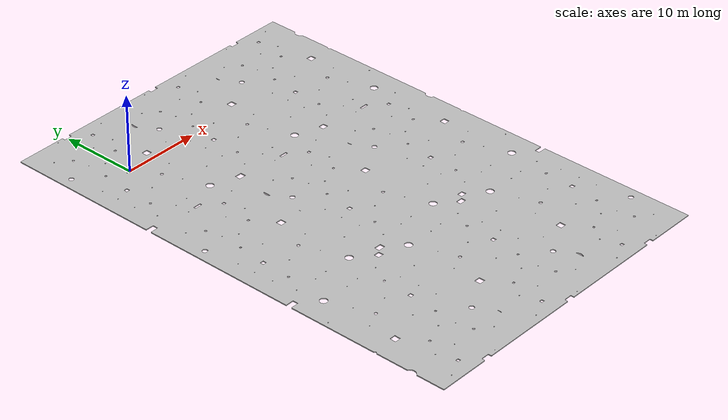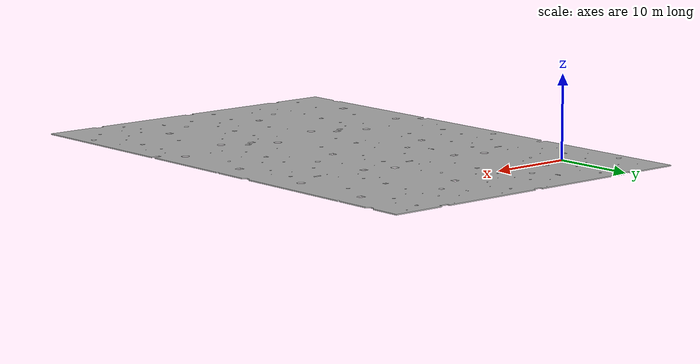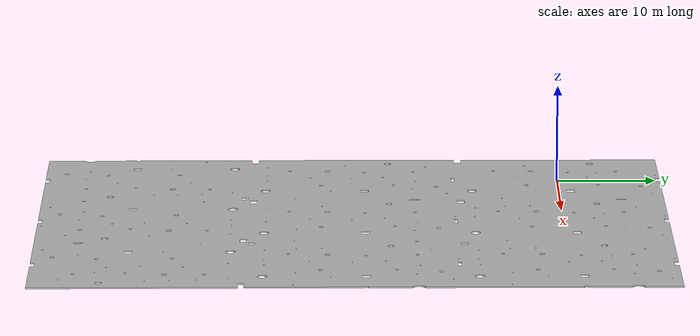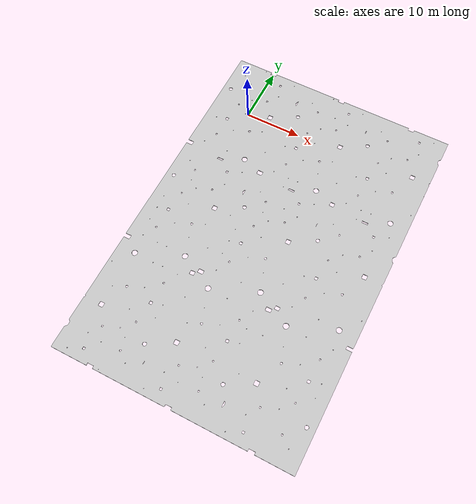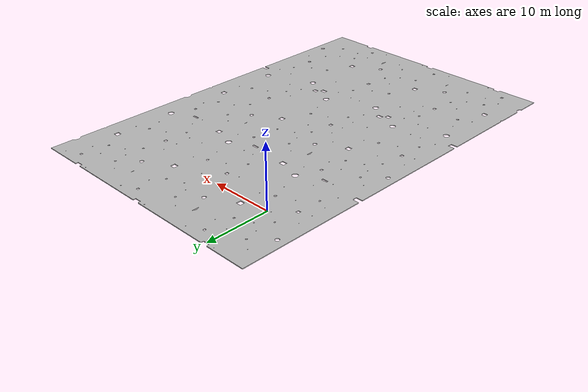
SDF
<?xml version="1.0" ?>
<sdf version="1.6">
  <model name="large_holed_floor">
    <link name="link">
      <inertial>
        <mass>1000</mass>
		<inertia>
          <ixx>1200083.33</ixx>
          <ixy>0</ixy>
          <ixz>0</ixz>
          <iyy>8333416.66</iyy>
          <iyz>0</iyz>
          <izz>2033333.33</izz>
        </inertia>
      </inertial>
      <collision name="collision">
        <geometry>
          <mesh>
            <uri>model://large_holed_floor/meshes/large_holed_floor.stl</uri>
            <scale>1 1 1</scale>
          </mesh>
        </geometry>
        <surface>
          <friction>
            <ode>
              <mu>100</mu>
              <mu2>50</mu2>
              <fdir1>0 0 0</fdir1>
              <slip1>0</slip1>
              <slip2>0</slip2>
            </ode>
          </friction>
        </surface>
      </collision>
      <visual name="visual">
	    <geometry>
          <mesh>
            <uri>model://large_holed_floor/meshes/large_holed_floor.dae</uri>
          </mesh>
        </geometry>
      <meta> <layer> 1 </layer></meta>
</visual>
    </link>
<static>1</static>
  </model>
</sdf>
